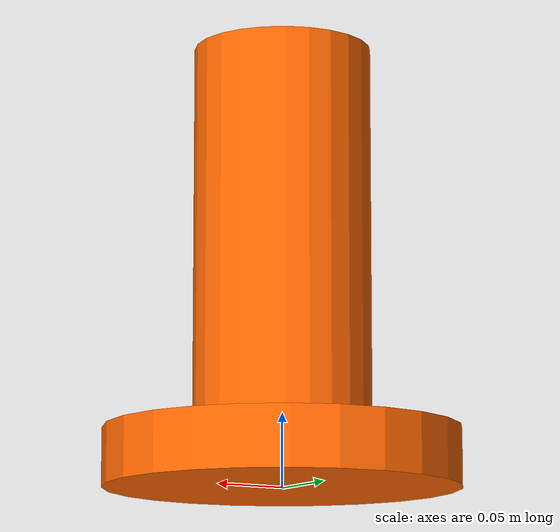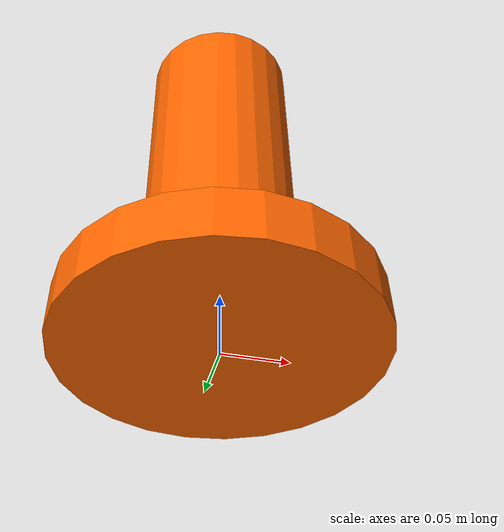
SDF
<?xml version="1.0"?>
<sdf version="1.6">
  <model name="traffic_cone">

    <static>true</static>

    <link name="link">

      <!-- Base: wide flat cylinder sitting on ground (center at z=0.02) -->
      <visual name="base_visual">
        <pose>0 0 0.02 0 0 0</pose>
        <geometry>
          <cylinder>
            <radius>0.12</radius>
            <length>0.04</length>
          </cylinder>
        </geometry>
        <material>
          <ambient>1.0 0.4 0.0 1.0</ambient>
          <diffuse>1.0 0.4 0.0 1.0</diffuse>
          <specular>0.1 0.05 0.0 1.0</specular>
        </material>
      </visual>

      <collision name="base_collision">
        <pose>0 0 0.02 0 0 0</pose>
        <geometry>
          <cylinder>
            <radius>0.12</radius>
            <length>0.04</length>
          </cylinder>
        </geometry>
      </collision>

      <!-- Body: narrow tall cylinder on top of base (center at z=0.17) -->
      <visual name="body_visual">
        <pose>0 0 0.17 0 0 0</pose>
        <geometry>
          <cylinder>
            <radius>0.06</radius>
            <length>0.26</length>
          </cylinder>
        </geometry>
        <material>
          <ambient>1.0 0.4 0.0 1.0</ambient>
          <diffuse>1.0 0.4 0.0 1.0</diffuse>
          <specular>0.1 0.05 0.0 1.0</specular>
        </material>
      </visual>

      <collision name="body_collision">
        <pose>0 0 0.17 0 0 0</pose>
        <geometry>
          <cylinder>
            <radius>0.06</radius>
            <length>0.26</length>
          </cylinder>
        </geometry>
      </collision>

      <inertial>
        <mass>1.0</mass>
        <inertia>
          <ixx>0.01</ixx><ixy>0</ixy><ixz>0</ixz>
          <iyy>0.01</iyy><iyz>0</iyz>
          <izz>0.01</izz>
        </inertia>
      </inertial>

    </link>
  </model>
</sdf>
